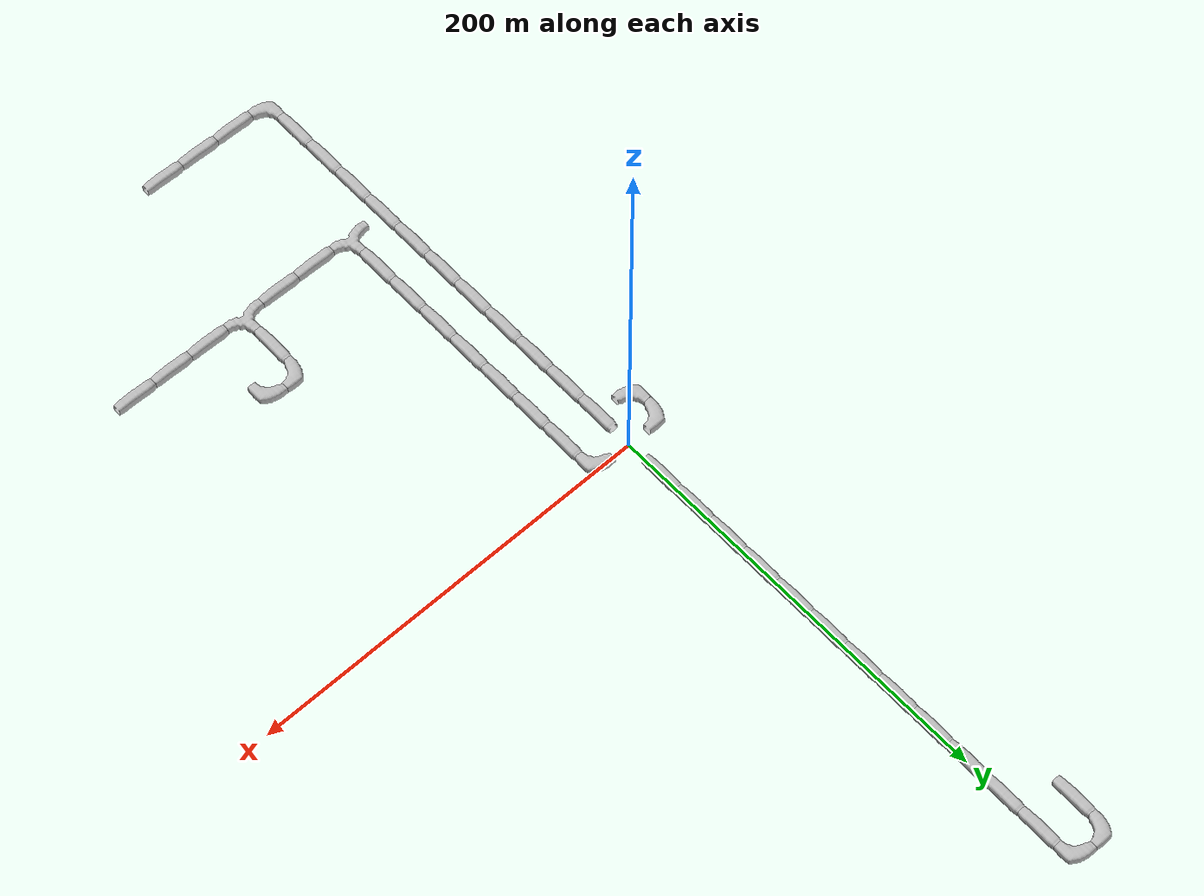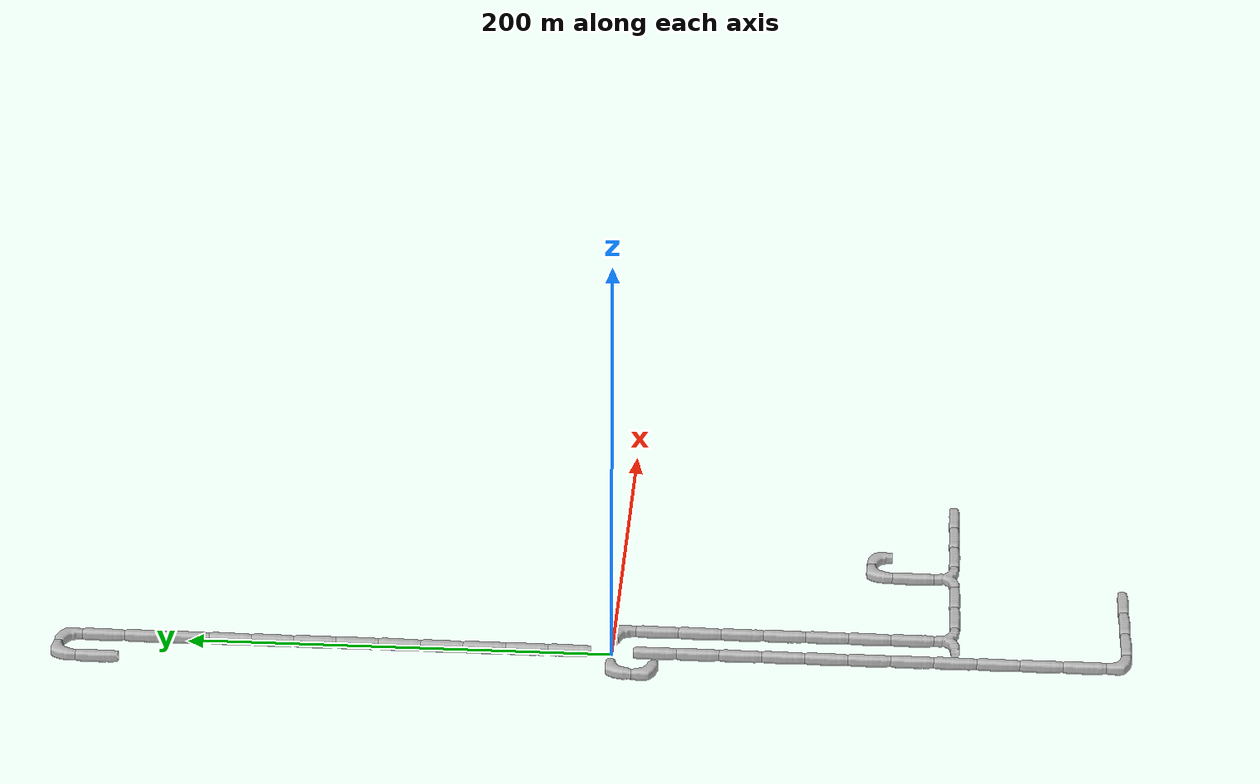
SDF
<sdf version="1.6">
 <world name="cave_1000_0">
  <include>
   <static>true</static>
   <name>cave_1_0</name>
   <pose>20 0 0 0 0 3.141592653589793</pose>
   <uri>model://cave_L_20m</uri>
  </include>
  <include>
   <static>true</static>
   <name>cave_1_-1</name>
   <pose>20 -20 0 0 0 0.0</pose>
   <uri>model://cave_straight_20m</uri>
  </include>
  <include>
   <static>true</static>
   <name>cave_1_-2</name>
   <pose>20 -40 0 0 0 0.0</pose>
   <uri>model://cave_straight_20m</uri>
  </include>
  <include>
   <static>true</static>
   <name>cave_1_-3</name>
   <pose>20 -60 0 0 0 0.0</pose>
   <uri>model://cave_straight_20m</uri>
  </include>
  <include>
   <static>true</static>
   <name>cave_1_-4</name>
   <pose>20 -80 0 0 0 0.0</pose>
   <uri>model://cave_straight_20m</uri>
  </include>
  <include>
   <static>true</static>
   <name>cave_1_-5</name>
   <pose>20 -100 0 0 0 0.0</pose>
   <uri>model://cave_straight_20m</uri>
  </include>
  <include>
   <static>true</static>
   <name>cave_1_-6</name>
   <pose>20 -120 0 0 0 0.0</pose>
   <uri>model://cave_straight_20m</uri>
  </include>
  <include>
   <static>true</static>
   <name>cave_1_-7</name>
   <pose>20 -140 0 0 0 0.0</pose>
   <uri>model://cave_straight_20m</uri>
  </include>
  <include>
   <static>true</static>
   <name>cave_1_-8</name>
   <pose>20 -160 0 0 0 0.0</pose>
   <uri>model://cave_3way_20m</uri>
  </include>
  <include>
   <static>true</static>
   <name>cave_2_-8</name>
   <pose>40 -160 0 0 0 1.5707963267948966</pose>
   <uri>model://cave_straight_20m</uri>
  </include>
  <include>
   <static>true</static>
   <name>cave_3_-8</name>
   <pose>60 -160 0 0 0 1.5707963267948966</pose>
   <uri>model://cave_straight_20m</uri>
  </include>
  <include>
   <static>true</static>
   <name>cave_4_-8</name>
   <pose>80 -160 0 0 0 0.0</pose>
   <uri>model://cave_3way_20m</uri>
  </include>
  <include>
   <static>true</static>
   <name>cave_5_-8</name>
   <pose>100 -160 0 0 0 1.5707963267948966</pose>
   <uri>model://cave_straight_20m</uri>
  </include>
  <include>
   <static>true</static>
   <name>cave_6_-8</name>
   <pose>120 -160 0 0 0 1.5707963267948966</pose>
   <uri>model://cave_straight_20m</uri>
  </include>
  <include>
   <static>true</static>
   <name>cave_7_-8</name>
   <pose>140 -160 0 0 0 1.5707963267948966</pose>
   <uri>model://cave_straight_20m</uri>
  </include>
  <include>
   <static>true</static>
   <name>cave_4_-7</name>
   <pose>80 -140 0 0 0 0.0</pose>
   <uri>model://cave_straight_20m</uri>
  </include>
  <include>
   <static>true</static>
   <name>cave_4_-6</name>
   <pose>80 -120 0 0 0 -1.5707963267948966</pose>
   <uri>model://cave_L_20m</uri>
  </include>
  <include>
   <static>true</static>
   <name>cave_5_-6</name>
   <pose>100 -120 0 0 0 3.141592653589793</pose>
   <uri>model://cave_L_20m</uri>
  </include>
  <include>
   <static>true</static>
   <name>cave_0_-1</name>
   <pose>0 -20 0 0 0 0.0</pose>
   <uri>model://cave_straight_20m</uri>
  </include>
  <include>
   <static>true</static>
   <name>cave_0_-2</name>
   <pose>0 -40 0 0 0 0.0</pose>
   <uri>model://cave_straight_20m</uri>
  </include>
  <include>
   <static>true</static>
   <name>cave_0_-3</name>
   <pose>0 -60 0 0 0 0.0</pose>
   <uri>model://cave_straight_20m</uri>
  </include>
  <include>
   <static>true</static>
   <name>cave_0_-4</name>
   <pose>0 -80 0 0 0 0.0</pose>
   <uri>model://cave_straight_20m</uri>
  </include>
  <include>
   <static>true</static>
   <name>cave_0_-5</name>
   <pose>0 -100 0 0 0 0.0</pose>
   <uri>model://cave_straight_20m</uri>
  </include>
  <include>
   <static>true</static>
   <name>cave_0_-6</name>
   <pose>0 -120 0 0 0 0.0</pose>
   <uri>model://cave_straight_20m</uri>
  </include>
  <include>
   <static>true</static>
   <name>cave_0_-7</name>
   <pose>0 -140 0 0 0 0.0</pose>
   <uri>model://cave_straight_20m</uri>
  </include>
  <include>
   <static>true</static>
   <name>cave_0_-8</name>
   <pose>0 -160 0 0 0 0.0</pose>
   <uri>model://cave_straight_20m</uri>
  </include>
  <include>
   <static>true</static>
   <name>cave_0_-9</name>
   <pose>0 -180 0 0 0 0.0</pose>
   <uri>model://cave_straight_20m</uri>
  </include>
  <include>
   <static>true</static>
   <name>cave_0_-10</name>
   <pose>0 -200 0 0 0 0.0</pose>
   <uri>model://cave_straight_20m</uri>
  </include>
  <include>
   <static>true</static>
   <name>cave_0_-11</name>
   <pose>0 -220 0 0 0 0.0</pose>
   <uri>model://cave_straight_20m</uri>
  </include>
  <include>
   <static>true</static>
   <name>cave_0_-12</name>
   <pose>0 -240 0 0 0 0.0</pose>
   <uri>model://cave_L_20m</uri>
  </include>
  <include>
   <static>true</static>
   <name>cave_1_-12</name>
   <pose>20 -240 0 0 0 1.5707963267948966</pose>
   <uri>model://cave_straight_20m</uri>
  </include>
  <include>
   <static>true</static>
   <name>cave_2_-12</name>
   <pose>40 -240 0 0 0 1.5707963267948966</pose>
   <uri>model://cave_straight_20m</uri>
  </include>
  <include>
   <static>true</static>
   <name>cave_3_-12</name>
   <pose>60 -240 0 0 0 1.5707963267948966</pose>
   <uri>model://cave_straight_20m</uri>
  </include>
  <include>
   <static>true</static>
   <name>cave_-1_0</name>
   <pose>-20 0 0 0 0 -1.5707963267948966</pose>
   <uri>model://cave_L_20m</uri>
  </include>
  <include>
   <static>true</static>
   <name>cave_-1_-1</name>
   <pose>-20 -20 0 0 0 0.0</pose>
   <uri>model://cave_L_20m</uri>
  </include>
  <include>
   <static>true</static>
   <name>cave_0_1</name>
   <pose>0 20 0 0 0 0.0</pose>
   <uri>model://cave_straight_20m</uri>
  </include>
  <include>
   <static>true</static>
   <name>cave_0_2</name>
   <pose>0 40 0 0 0 0.0</pose>
   <uri>model://cave_straight_20m</uri>
  </include>
  <include>
   <static>true</static>
   <name>cave_0_3</name>
   <pose>0 60 0 0 0 0.0</pose>
   <uri>model://cave_straight_20m</uri>
  </include>
  <include>
   <static>true</static>
   <name>cave_0_4</name>
   <pose>0 80 0 0 0 0.0</pose>
   <uri>model://cave_straight_20m</uri>
  </include>
  <include>
   <static>true</static>
   <name>cave_0_5</name>
   <pose>0 100 0 0 0 0.0</pose>
   <uri>model://cave_straight_20m</uri>
  </include>
  <include>
   <static>true</static>
   <name>cave_0_6</name>
   <pose>0 120 0 0 0 0.0</pose>
   <uri>model://cave_straight_20m</uri>
  </include>
  <include>
   <static>true</static>
   <name>cave_0_7</name>
   <pose>0 140 0 0 0 0.0</pose>
   <uri>model://cave_straight_20m</uri>
  </include>
  <include>
   <static>true</static>
   <name>cave_0_8</name>
   <pose>0 160 0 0 0 0.0</pose>
   <uri>model://cave_straight_20m</uri>
  </include>
  <include>
   <static>true</static>
   <name>cave_0_9</name>
   <pose>0 180 0 0 0 0.0</pose>
   <uri>model://cave_straight_20m</uri>
  </include>
  <include>
   <static>true</static>
   <name>cave_0_10</name>
   <pose>0 200 0 0 0 0.0</pose>
   <uri>model://cave_straight_20m</uri>
  </include>
  <include>
   <static>true</static>
   <name>cave_0_11</name>
   <pose>0 220 0 0 0 0.0</pose>
   <uri>model://cave_straight_20m</uri>
  </include>
  <include>
   <static>true</static>
   <name>cave_0_12</name>
   <pose>0 240 0 0 0 0.0</pose>
   <uri>model://cave_straight_20m</uri>
  </include>
  <include>
   <static>true</static>
   <name>cave_0_13</name>
   <pose>0 260 0 0 0 3.141592653589793</pose>
   <uri>model://cave_L_20m</uri>
  </include>
  <include>
   <static>true</static>
   <name>cave_-1_13</name>
   <pose>-20 260 0 0 0 -1.5707963267948966</pose>
   <uri>model://cave_L_20m</uri>
  </include>
  <include>
   <static>true</static>
   <name>cave_-1_12</name>
   <pose>-20 240 0 0 0 0.0</pose>
   <uri>model://cave_straight_20m</uri>
  </include>
 </world>
</sdf>

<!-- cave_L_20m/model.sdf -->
<sdf version="1.6">
  <model name="cave_L_20m">
    <static>true</static>
    <link name="base">
      <pose>0 0 0 0 0 0</pose>
      <collision name="base_collision">
        <pose>0 0 0 0 0 0</pose>
        <geometry>
          <mesh>
            <uri>model://cave_L_20m/meshes/cave_L_20m.dae</uri>
          </mesh>
        </geometry>
        <surface>
          <contact>
             <collide_bitmask>0xffff</collide_bitmask>
          </contact>
          <friction>
            <ode>
              <mu>100</mu>
              <mu2>50</mu2>
            </ode>
          </friction>
        </surface>
      </collision>
      <visual name="base_visual">
        <pose>0 0 0 0 0 0</pose>
        <cast_shadows>false</cast_shadows>
        <geometry>
          <mesh>
            <uri>model://cave_L_20m/meshes/cave_L_20m.dae</uri>
          </mesh>
        </geometry>
      </visual>
    </link>
  </model>
</sdf>

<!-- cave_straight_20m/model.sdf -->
<sdf version="1.6">
  <model name="cave_straight_20m">
    <static>true</static>
    <link name="base">
      <pose>0 0 0 0 0 0</pose>
      <collision name="base_collision">
        <pose>0 0 0 0 0 0</pose>
        <geometry>
          <mesh>
            <uri>model://cave_straight_20m/meshes/cave_straight_20m.dae</uri>
          </mesh>
        </geometry>
        <surface>
          <contact>
             <collide_bitmask>0xffff</collide_bitmask>
          </contact>
          <friction>
            <ode>
              <mu>100</mu>
              <mu2>50</mu2>
            </ode>
          </friction>
        </surface>
      </collision>
      <visual name="base_visual">
        <pose>0 0 0 0 0 0</pose>
        <cast_shadows>false</cast_shadows>
        <geometry>
          <mesh>
            <uri>model://cave_straight_20m/meshes/cave_straight_20m.dae</uri>
          </mesh>
        </geometry>
      </visual>
    </link>
  </model>
</sdf>

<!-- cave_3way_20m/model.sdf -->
<sdf version="1.6">
  <model name="cave_3way_20m">
    <static>true</static>
    <link name="base">
      <pose>0 0 0 0 0 0</pose>
      <collision name="base_collision">
        <pose>0 0 0 0 0 0</pose>
        <geometry>
          <mesh>
            <uri>model://cave_3way_20m/meshes/cave_3way_20m.dae</uri>
          </mesh>
        </geometry>
        <surface>
          <contact>
             <collide_bitmask>0xffff</collide_bitmask>
          </contact>
          <friction>
            <ode>
              <mu>100</mu>
              <mu2>50</mu2>
            </ode>
          </friction>
        </surface>
      </collision>
      <visual name="base_visual">
        <cast_shadows>false</cast_shadows>
        <pose>0 0 0 0 0 0</pose>
        <geometry>
          <mesh>
            <uri>model://cave_3way_20m/meshes/cave_3way_20m.dae</uri>
          </mesh>
        </geometry>
      </visual>
    </link>
  </model>
</sdf>
